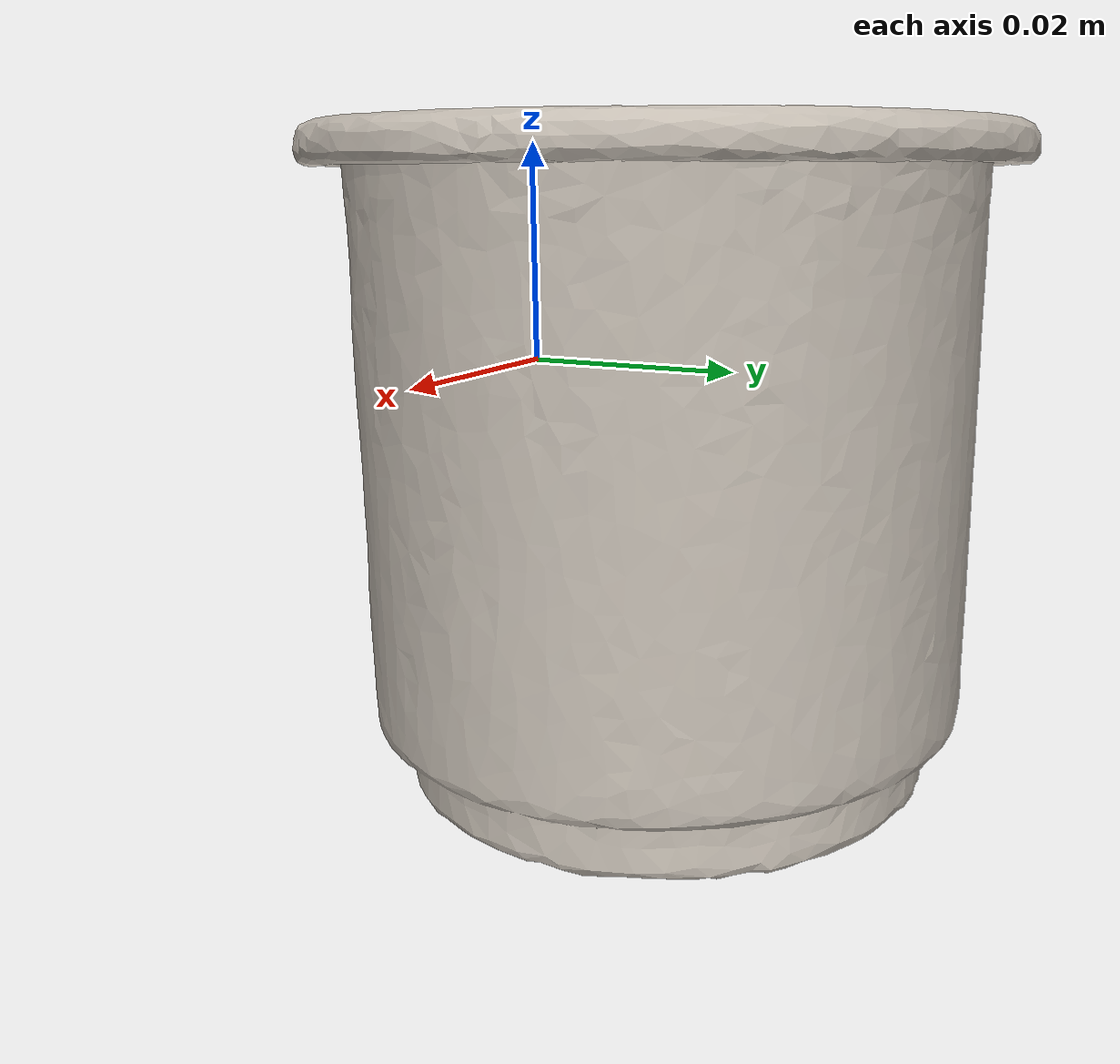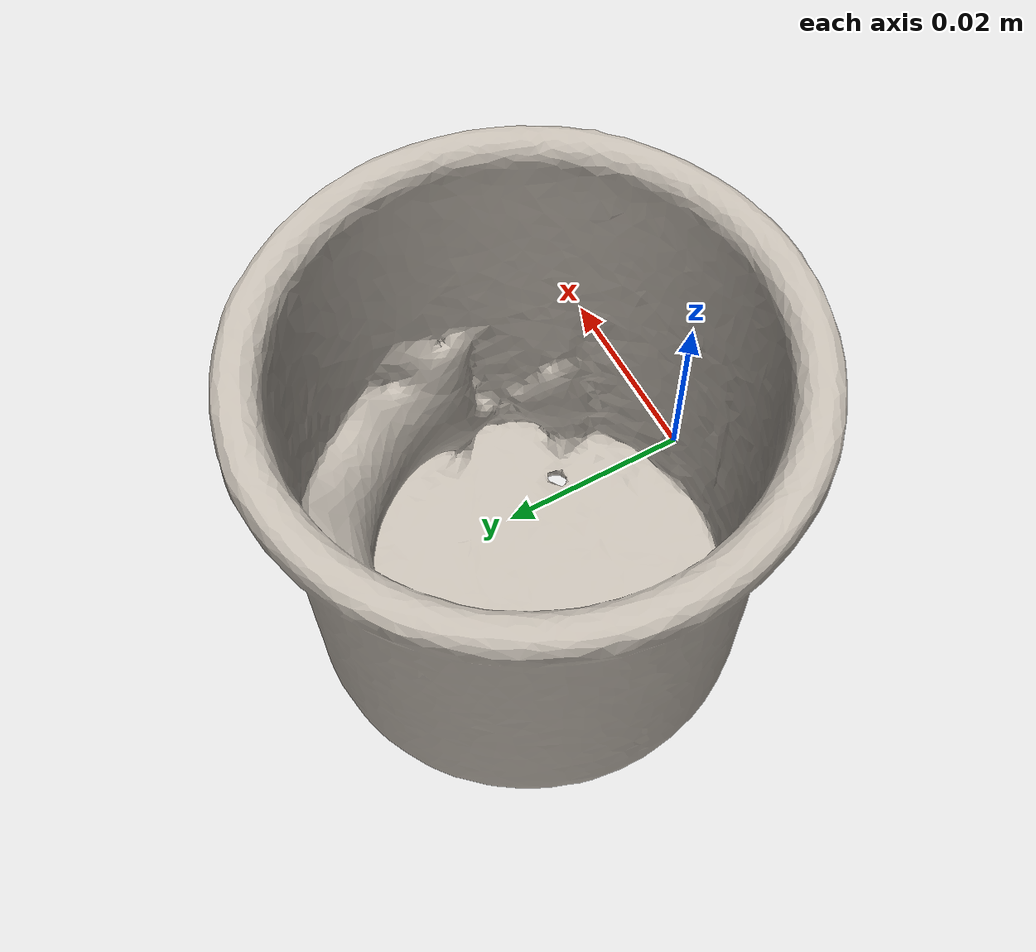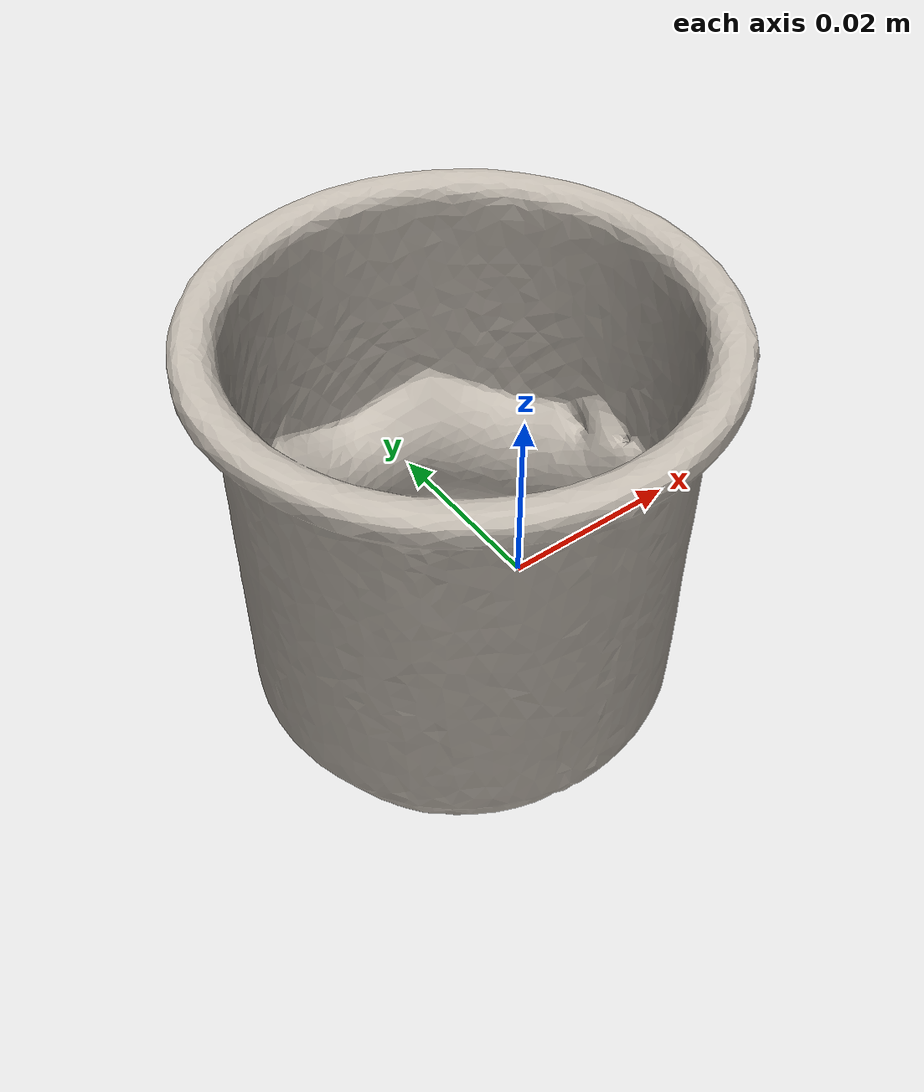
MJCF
<mujoco model="bread">
  <asset>
    <mesh file="nontextured.stl" name="obj_mesh" scale="0.8 0.8 0.8"/>
    <texture file="../../../../../textures/bread.png" type="2d" name="tex-bread" />
    <material name="bread" reflectance="0.7" texrepeat="15 15" texture="tex-bread" texuniform="true"/>
  </asset>
  <worldbody>
    <body>
      <body name="collision">
        <geom pos="0.0211005 0.078105 -0.034687" mesh="obj_mesh" type="mesh" solimp="0.998 0.998 0.001" solref="0.001 1" density="50" friction="0.95 0.3 0.1"  material="bread" group="1" condim="4"/>
      </body>
      <body name="visual">
        <geom pos="0.0211005 0.078105 -0.034687" mesh="obj_mesh" type="mesh" material="bread"  conaffinity="0" contype="0"  group="0" mass="0.0001"/>
        <geom pos="0.0211005 0.078105 -0.034687" mesh="obj_mesh" type="mesh" material="bread"  conaffinity="0" contype="0"  group="1" mass="0.0001"/>
      </body>
      <site rgba="0 0 0 0" size="0.005" pos="0 0 -0.035389" name="bottom_site"/>
      <site rgba="0 0 0 0" size="0.005" pos="0 0 0.035389" name="top_site"/>
      <site rgba="0 0 0 0" size="0.005" pos="0.0377715 0.037637000000000004 0.035389" name="horizontal_radius_site"/>
    </body>
  </worldbody>
</mujoco>
